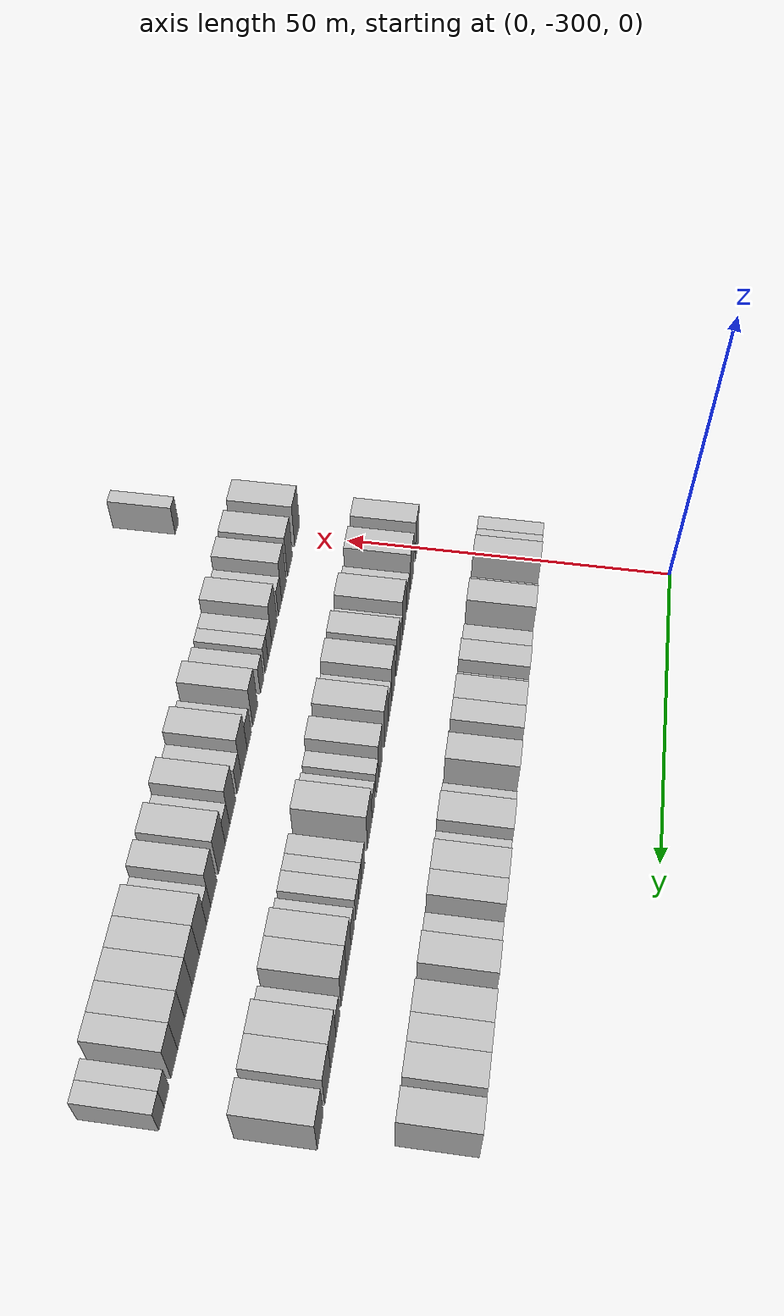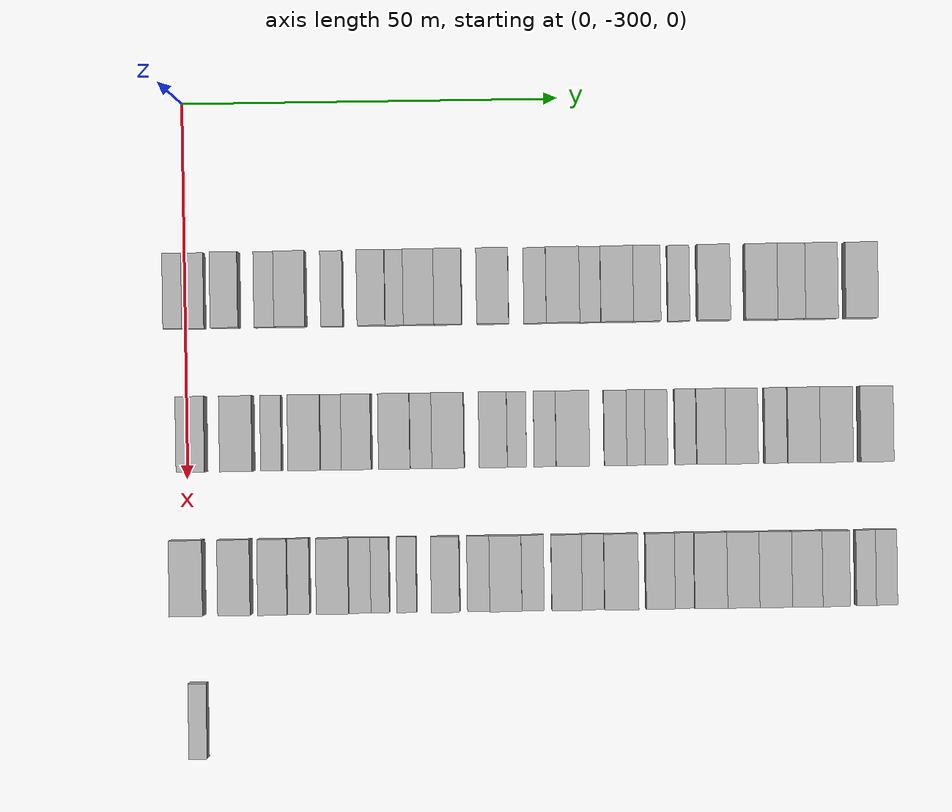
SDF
<sdf version="1.6">
 <world name="default">
  <model name="building_12">
   <static>1</static>
   <pose>25.0000 -301.3705 0 0.000000 0.000000 0.000000</pose>
   <link name="link">
    <pose>0 0 3.00 0 0 0</pose>
    <collision name="collision"><geometry><box><size>10.0000 2.4997 6.0000</size></box></geometry></collision>
    <visual name="visual">
     <cast_shadows>0</cast_shadows>
     <geometry><box><size>10.0000 2.4997 6.0000</size></box></geometry>
     <material>
      <script>
       <uri>model://HANNAS_wall/materials/scripts</uri>
       <uri>model://HANNAS_wall/materials/textures</uri>
       <name>vrc/HANNAS_wall</name>
      </script>
     </material>
    </visual>
   </link>
  </model>
  <model name="building_13">
   <static>1</static>
   <pose>25.0000 -298.6594 0 0.000000 0.000000 0.000000</pose>
   <link name="link">
    <pose>0 0 3.00 0 0 0</pose>
    <collision name="collision"><geometry><box><size>10.0000 2.9223 6.0000</size></box></geometry></collision>
    <visual name="visual">
     <cast_shadows>0</cast_shadows>
     <geometry><box><size>10.0000 2.9223 6.0000</size></box></geometry>
     <material>
      <script>
       <uri>model://HANNAS_wall/materials/scripts</uri>
       <uri>model://HANNAS_wall/materials/textures</uri>
       <name>vrc/HANNAS_wall</name>
      </script>
     </material>
    </visual>
   </link>
  </model>
  <model name="building_14">
   <static>1</static>
   <pose>25.0000 -294.3800 0 0.000000 0.000000 0.000000</pose>
   <link name="link">
    <pose>0 0 4.50 0 0 0</pose>
    <collision name="collision"><geometry><box><size>10.0000 3.6365 9.0000</size></box></geometry></collision>
    <visual name="visual">
     <cast_shadows>0</cast_shadows>
     <geometry><box><size>10.0000 3.6365 9.0000</size></box></geometry>
     <material>
      <script>
       <uri>model://HANNAS_wall/materials/scripts</uri>
       <uri>model://HANNAS_wall/materials/textures</uri>
       <name>vrc/HANNAS_wall</name>
      </script>
     </material>
    </visual>
   </link>
  </model>
  <model name="building_15">
   <static>1</static>
   <pose>25.0000 -289.1877 0 0.000000 0.000000 0.000000</pose>
   <link name="link">
    <pose>0 0 3.00 0 0 0</pose>
    <collision name="collision"><geometry><box><size>10.0000 2.7483 6.0000</size></box></geometry></collision>
    <visual name="visual">
     <cast_shadows>0</cast_shadows>
     <geometry><box><size>10.0000 2.7483 6.0000</size></box></geometry>
     <material>
      <script>
       <uri>model://HANNAS_wall/materials/scripts</uri>
       <uri>model://HANNAS_wall/materials/textures</uri>
       <name>vrc/HANNAS_wall</name>
      </script>
     </material>
    </visual>
   </link>
  </model>
  <model name="building_16">
   <static>1</static>
   <pose>25.0000 -285.7804 0 0.000000 0.000000 0.000000</pose>
   <link name="link">
    <pose>0 0 4.50 0 0 0</pose>
    <collision name="collision"><geometry><box><size>10.0000 4.0662 9.0000</size></box></geometry></collision>
    <visual name="visual">
     <cast_shadows>0</cast_shadows>
     <geometry><box><size>10.0000 4.0662 9.0000</size></box></geometry>
     <material>
      <script>
       <uri>model://HANNAS_wall/materials/scripts</uri>
       <uri>model://HANNAS_wall/materials/textures</uri>
       <name>vrc/HANNAS_wall</name>
      </script>
     </material>
    </visual>
   </link>
  </model>
  <model name="building_17">
   <static>1</static>
   <pose>25.0000 -280.2999 0 0.000000 0.000000 0.000000</pose>
   <link name="link">
    <pose>0 0 3.00 0 0 0</pose>
    <collision name="collision"><geometry><box><size>10.0000 2.8947 6.0000</size></box></geometry></collision>
    <visual name="visual">
     <cast_shadows>0</cast_shadows>
     <geometry><box><size>10.0000 2.8947 6.0000</size></box></geometry>
     <material>
      <script>
       <uri>model://HANNAS_wall/materials/scripts</uri>
       <uri>model://HANNAS_wall/materials/textures</uri>
       <name>vrc/HANNAS_wall</name>
      </script>
     </material>
    </visual>
   </link>
  </model>
  <model name="building_18">
   <static>1</static>
   <pose>25.0000 -275.0192 0 0.000000 0.000000 0.000000</pose>
   <link name="link">
    <pose>0 0 4.50 0 0 0</pose>
    <collision name="collision"><geometry><box><size>10.0000 3.6667 9.0000</size></box></geometry></collision>
    <visual name="visual">
     <cast_shadows>0</cast_shadows>
     <geometry><box><size>10.0000 3.6667 9.0000</size></box></geometry>
     <material>
      <script>
       <uri>model://HANNAS_wall/materials/scripts</uri>
       <uri>model://HANNAS_wall/materials/textures</uri>
       <name>vrc/HANNAS_wall</name>
      </script>
     </material>
    </visual>
   </link>
  </model>
  <model name="building_19">
   <static>1</static>
   <pose>25.0000 -271.9733 0 0.000000 0.000000 0.000000</pose>
   <link name="link">
    <pose>0 0 3.00 0 0 0</pose>
    <collision name="collision"><geometry><box><size>10.0000 2.4252 6.0000</size></box></geometry></collision>
    <visual name="visual">
     <cast_shadows>0</cast_shadows>
     <geometry><box><size>10.0000 2.4252 6.0000</size></box></geometry>
     <material>
      <script>
       <uri>model://HANNAS_wall/materials/scripts</uri>
       <uri>model://HANNAS_wall/materials/textures</uri>
       <name>vrc/HANNAS_wall</name>
      </script>
     </material>
    </visual>
   </link>
  </model>
  <model name="building_20">
   <static>1</static>
   <pose>25.0000 -268.7436 0 0.000000 0.000000 0.000000</pose>
   <link name="link">
    <pose>0 0 4.50 0 0 0</pose>
    <collision name="collision"><geometry><box><size>10.0000 4.0341 9.0000</size></box></geometry></collision>
    <visual name="visual">
     <cast_shadows>0</cast_shadows>
     <geometry><box><size>10.0000 4.0341 9.0000</size></box></geometry>
     <material>
      <script>
       <uri>model://HANNAS_wall/materials/scripts</uri>
       <uri>model://HANNAS_wall/materials/textures</uri>
       <name>vrc/HANNAS_wall</name>
      </script>
     </material>
    </visual>
   </link>
  </model>
  <model name="building_21">
   <static>1</static>
   <pose>25.0000 -264.9043 0 0.000000 0.000000 0.000000</pose>
   <link name="link">
    <pose>0 0 4.50 0 0 0</pose>
    <collision name="collision"><geometry><box><size>10.0000 3.6446 9.0000</size></box></geometry></collision>
    <visual name="visual">
     <cast_shadows>0</cast_shadows>
     <geometry><box><size>10.0000 3.6446 9.0000</size></box></geometry>
     <material>
      <script>
       <uri>model://HANNAS_wall/materials/scripts</uri>
       <uri>model://HANNAS_wall/materials/textures</uri>
       <name>vrc/HANNAS_wall</name>
      </script>
     </material>
    </visual>
   </link>
  </model>
  <model name="building_22">
   <static>1</static>
   <pose>25.0000 -258.9772 0 0.000000 0.000000 0.000000</pose>
   <link name="link">
    <pose>0 0 4.50 0 0 0</pose>
    <collision name="collision"><geometry><box><size>10.0000 4.2097 9.0000</size></box></geometry></collision>
    <visual name="visual">
     <cast_shadows>0</cast_shadows>
     <geometry><box><size>10.0000 4.2097 9.0000</size></box></geometry>
     <material>
      <script>
       <uri>model://HANNAS_wall/materials/scripts</uri>
       <uri>model://HANNAS_wall/materials/textures</uri>
       <name>vrc/HANNAS_wall</name>
      </script>
     </material>
    </visual>
   </link>
  </model>
  <model name="building_23">
   <static>1</static>
   <pose>25.0000 -253.3896 0 0.000000 0.000000 0.000000</pose>
   <link name="link">
    <pose>0 0 3.00 0 0 0</pose>
    <collision name="collision"><geometry><box><size>10.0000 2.9653 6.0000</size></box></geometry></collision>
    <visual name="visual">
     <cast_shadows>0</cast_shadows>
     <geometry><box><size>10.0000 2.9653 6.0000</size></box></geometry>
     <material>
      <script>
       <uri>model://HANNAS_wall/materials/scripts</uri>
       <uri>model://HANNAS_wall/materials/textures</uri>
       <name>vrc/HANNAS_wall</name>
      </script>
     </material>
    </visual>
   </link>
  </model>
  <model name="building_24">
   <static>1</static>
   <pose>25.0000 -249.6999 0 0.000000 0.000000 0.000000</pose>
   <link name="link">
    <pose>0 0 4.50 0 0 0</pose>
    <collision name="collision"><geometry><box><size>10.0000 4.4142 9.0000</size></box></geometry></collision>
    <visual name="visual">
     <cast_shadows>0</cast_shadows>
     <geometry><box><size>10.0000 4.4142 9.0000</size></box></geometry>
     <material>
      <script>
       <uri>model://HANNAS_wall/materials/scripts</uri>
       <uri>model://HANNAS_wall/materials/textures</uri>
       <name>vrc/HANNAS_wall</name>
      </script>
     </material>
    </visual>
   </link>
  </model>
  <model name="building_25">
   <static>1</static>
   <pose>25.0000 -246.0931 0 0.000000 0.000000 0.000000</pose>
   <link name="link">
    <pose>0 0 3.00 0 0 0</pose>
    <collision name="collision"><geometry><box><size>10.0000 2.7993 6.0000</size></box></geometry></collision>
    <visual name="visual">
     <cast_shadows>0</cast_shadows>
     <geometry><box><size>10.0000 2.7993 6.0000</size></box></geometry>
     <material>
      <script>
       <uri>model://HANNAS_wall/materials/scripts</uri>
       <uri>model://HANNAS_wall/materials/textures</uri>
       <name>vrc/HANNAS_wall</name>
      </script>
     </material>
    </visual>
   </link>
  </model>
  <model name="building_26">
   <static>1</static>
   <pose>25.0000 -242.5474 0 0.000000 0.000000 0.000000</pose>
   <link name="link">
    <pose>0 0 4.50 0 0 0</pose>
    <collision name="collision"><geometry><box><size>10.0000 4.2921 9.0000</size></box></geometry></collision>
    <visual name="visual">
     <cast_shadows>0</cast_shadows>
     <geometry><box><size>10.0000 4.2921 9.0000</size></box></geometry>
     <material>
      <script>
       <uri>model://HANNAS_wall/materials/scripts</uri>
       <uri>model://HANNAS_wall/materials/textures</uri>
       <name>vrc/HANNAS_wall</name>
      </script>
     </material>
    </visual>
   </link>
  </model>
  <model name="building_27">
   <static>1</static>
   <pose>25.0000 -238.5943 0 0.000000 0.000000 0.000000</pose>
   <link name="link">
    <pose>0 0 4.50 0 0 0</pose>
    <collision name="collision"><geometry><box><size>10.0000 3.6142 9.0000</size></box></geometry></collision>
    <visual name="visual">
     <cast_shadows>0</cast_shadows>
     <geometry><box><size>10.0000 3.6142 9.0000</size></box></geometry>
     <material>
      <script>
       <uri>model://HANNAS_wall/materials/scripts</uri>
       <uri>model://HANNAS_wall/materials/textures</uri>
       <name>vrc/HANNAS_wall</name>
      </script>
     </material>
    </visual>
   </link>
  </model>
  <model name="building_28">
   <static>1</static>
   <pose>25.0000 -234.3465 0 0.000000 0.000000 0.000000</pose>
   <link name="link">
    <pose>0 0 3.00 0 0 0</pose>
    <collision name="collision"><geometry><box><size>10.0000 2.8813 6.0000</size></box></geometry></collision>
    <visual name="visual">
     <cast_shadows>0</cast_shadows>
     <geometry><box><size>10.0000 2.8813 6.0000</size></box></geometry>
     <material>
      <script>
       <uri>model://HANNAS_wall/materials/scripts</uri>
       <uri>model://HANNAS_wall/materials/textures</uri>
       <name>vrc/HANNAS_wall</name>
      </script>
     </material>
    </visual>
   </link>
  </model>
  <model name="building_29">
   <static>1</static>
   <pose>25.0000 -229.7559 0 0.000000 0.000000 0.000000</pose>
   <link name="link">
    <pose>0 0 4.50 0 0 0</pose>
    <collision name="collision"><geometry><box><size>10.0000 4.2998 9.0000</size></box></geometry></collision>
    <visual name="visual">
     <cast_shadows>0</cast_shadows>
     <geometry><box><size>10.0000 4.2998 9.0000</size></box></geometry>
     <material>
      <script>
       <uri>model://HANNAS_wall/materials/scripts</uri>
       <uri>model://HANNAS_wall/materials/textures</uri>
       <name>vrc/HANNAS_wall</name>
      </script>
     </material>
    </visual>
   </link>
  </model>
  <model name="building_30">
   <static>1</static>
   <pose>25.0000 -223.4997 0 0.000000 0.000000 0.000000</pose>
   <link name="link">
    <pose>0 0 4.50 0 0 0</pose>
    <collision name="collision"><geometry><box><size>10.0000 4.2128 9.0000</size></box></geometry></collision>
    <visual name="visual">
     <cast_shadows>0</cast_shadows>
     <geometry><box><size>10.0000 4.2128 9.0000</size></box></geometry>
     <material>
      <script>
       <uri>model://HANNAS_wall/materials/scripts</uri>
       <uri>model://HANNAS_wall/materials/textures</uri>
       <name>vrc/HANNAS_wall</name>
      </script>
     </material>
    </visual>
   </link>
  </model>
  <model name="building_31">
   <static>1</static>
   <pose>25.0000 -219.5644 0 0.000000 0.000000 0.000000</pose>
   <link name="link">
    <pose>0 0 4.50 0 0 0</pose>
    <collision name="collision"><geometry><box><size>10.0000 3.6578 9.0000</size></box></geometry></collision>
    <visual name="visual">
     <cast_shadows>0</cast_shadows>
     <geometry><box><size>10.0000 3.6578 9.0000</size></box></geometry>
     <material>
      <script>
       <uri>model://HANNAS_wall/materials/scripts</uri>
       <uri>model://HANNAS_wall/materials/textures</uri>
       <name>vrc/HANNAS_wall</name>
      </script>
     </material>
    </visual>
   </link>
  </model>
  <model name="building_32">
   <static>1</static>
   <pose>25.0000 -215.5783 0 0.000000 0.000000 0.000000</pose>
   <link name="link">
    <pose>0 0 4.50 0 0 0</pose>
    <collision name="collision"><geometry><box><size>10.0000 4.3143 9.0000</size></box></geometry></collision>
    <visual name="visual">
     <cast_shadows>0</cast_shadows>
     <geometry><box><size>10.0000 4.3143 9.0000</size></box></geometry>
     <material>
      <script>
       <uri>model://HANNAS_wall/materials/scripts</uri>
       <uri>model://HANNAS_wall/materials/textures</uri>
       <name>vrc/HANNAS_wall</name>
      </script>
     </material>
    </visual>
   </link>
  </model>
  <model name="building_33">
   <static>1</static>
   <pose>25.0000 -210.2812 0 0.000000 0.000000 0.000000</pose>
   <link name="link">
    <pose>0 0 4.50 0 0 0</pose>
    <collision name="collision"><geometry><box><size>10.0000 4.2799 9.0000</size></box></geometry></collision>
    <visual name="visual">
     <cast_shadows>0</cast_shadows>
     <geometry><box><size>10.0000 4.2799 9.0000</size></box></geometry>
     <material>
      <script>
       <uri>model://HANNAS_wall/materials/scripts</uri>
       <uri>model://HANNAS_wall/materials/textures</uri>
       <name>vrc/HANNAS_wall</name>
      </script>
     </material>
    </visual>
   </link>
  </model>
  <model name="building_183">
   <static>1</static>
   <pose>44.0000 -299.1177 0 0.000000 0.000000 0.000000</pose>
   <link name="link">
    <pose>0 0 4.50 0 0 0</pose>
    <collision name="collision"><geometry><box><size>10.0000 3.7399 9.0000</size></box></geometry></collision>
    <visual name="visual">
     <cast_shadows>0</cast_shadows>
     <geometry><box><size>10.0000 3.7399 9.0000</size></box></geometry>
     <material>
      <script>
       <uri>model://HANNAS_wall/materials/scripts</uri>
       <uri>model://HANNAS_wall/materials/textures</uri>
       <name>vrc/HANNAS_wall</name>
      </script>
     </material>
    </visual>
   </link>
  </model>
  <model name="building_184">
   <static>1</static>
   <pose>44.0000 -293.1045 0 0.000000 0.000000 0.000000</pose>
   <link name="link">
    <pose>0 0 4.50 0 0 0</pose>
    <collision name="collision"><geometry><box><size>10.0000 4.2865 9.0000</size></box></geometry></collision>
    <visual name="visual">
     <cast_shadows>0</cast_shadows>
     <geometry><box><size>10.0000 4.2865 9.0000</size></box></geometry>
     <material>
      <script>
       <uri>model://HANNAS_wall/materials/scripts</uri>
       <uri>model://HANNAS_wall/materials/textures</uri>
       <name>vrc/HANNAS_wall</name>
      </script>
     </material>
    </visual>
   </link>
  </model>
  <model name="building_185">
   <static>1</static>
   <pose>44.0000 -288.5981 0 0.000000 0.000000 0.000000</pose>
   <link name="link">
    <pose>0 0 3.00 0 0 0</pose>
    <collision name="collision"><geometry><box><size>10.0000 2.7263 6.0000</size></box></geometry></collision>
    <visual name="visual">
     <cast_shadows>0</cast_shadows>
     <geometry><box><size>10.0000 2.7263 6.0000</size></box></geometry>
     <material>
      <script>
       <uri>model://HANNAS_wall/materials/scripts</uri>
       <uri>model://HANNAS_wall/materials/textures</uri>
       <name>vrc/HANNAS_wall</name>
      </script>
     </material>
    </visual>
   </link>
  </model>
  <model name="building_186">
   <static>1</static>
   <pose>44.0000 -284.1178 0 0.000000 0.000000 0.000000</pose>
   <link name="link">
    <pose>0 0 4.50 0 0 0</pose>
    <collision name="collision"><geometry><box><size>10.0000 4.2342 9.0000</size></box></geometry></collision>
    <visual name="visual">
     <cast_shadows>0</cast_shadows>
     <geometry><box><size>10.0000 4.2342 9.0000</size></box></geometry>
     <material>
      <script>
       <uri>model://HANNAS_wall/materials/scripts</uri>
       <uri>model://HANNAS_wall/materials/textures</uri>
       <name>vrc/HANNAS_wall</name>
      </script>
     </material>
    </visual>
   </link>
  </model>
  <model name="building_187">
   <static>1</static>
   <pose>44.0000 -280.5986 0 0.000000 0.000000 0.000000</pose>
   <link name="link">
    <pose>0 0 3.00 0 0 0</pose>
    <collision name="collision"><geometry><box><size>10.0000 2.8042 6.0000</size></box></geometry></collision>
    <visual name="visual">
     <cast_shadows>0</cast_shadows>
     <geometry><box><size>10.0000 2.8042 6.0000</size></box></geometry>
     <material>
      <script>
       <uri>model://HANNAS_wall/materials/scripts</uri>
       <uri>model://HANNAS_wall/materials/textures</uri>
       <name>vrc/HANNAS_wall</name>
      </script>
     </material>
    </visual>
   </link>
  </model>
  <model name="building_188">
   <static>1</static>
   <pose>44.0000 -277.2508 0 0.000000 0.000000 0.000000</pose>
   <link name="link">
    <pose>0 0 4.50 0 0 0</pose>
    <collision name="collision"><geometry><box><size>10.0000 3.8915 9.0000</size></box></geometry></collision>
    <visual name="visual">
     <cast_shadows>0</cast_shadows>
     <geometry><box><size>10.0000 3.8915 9.0000</size></box></geometry>
     <material>
      <script>
       <uri>model://HANNAS_wall/materials/scripts</uri>
       <uri>model://HANNAS_wall/materials/textures</uri>
       <name>vrc/HANNAS_wall</name>
      </script>
     </material>
    </visual>
   </link>
  </model>
  <model name="building_189">
   <static>1</static>
   <pose>44.0000 -272.2369 0 0.000000 0.000000 0.000000</pose>
   <link name="link">
    <pose>0 0 4.50 0 0 0</pose>
    <collision name="collision"><geometry><box><size>10.0000 4.1362 9.0000</size></box></geometry></collision>
    <visual name="visual">
     <cast_shadows>0</cast_shadows>
     <geometry><box><size>10.0000 4.1362 9.0000</size></box></geometry>
     <material>
      <script>
       <uri>model://HANNAS_wall/materials/scripts</uri>
       <uri>model://HANNAS_wall/materials/textures</uri>
       <name>vrc/HANNAS_wall</name>
      </script>
     </material>
    </visual>
   </link>
  </model>
  <model name="building_190">
   <static>1</static>
   <pose>44.0000 -268.7240 0 0.000000 0.000000 0.000000</pose>
   <link name="link">
    <pose>0 0 3.00 0 0 0</pose>
    <collision name="collision"><geometry><box><size>10.0000 2.8894 6.0000</size></box></geometry></collision>
    <visual name="visual">
     <cast_shadows>0</cast_shadows>
     <geometry><box><size>10.0000 2.8894 6.0000</size></box></geometry>
     <material>
      <script>
       <uri>model://HANNAS_wall/materials/scripts</uri>
       <uri>model://HANNAS_wall/materials/textures</uri>
       <name>vrc/HANNAS_wall</name>
      </script>
     </material>
    </visual>
   </link>
  </model>
  <model name="building_191">
   <static>1</static>
   <pose>44.0000 -265.1579 0 0.000000 0.000000 0.000000</pose>
   <link name="link">
    <pose>0 0 4.50 0 0 0</pose>
    <collision name="collision"><geometry><box><size>10.0000 4.2429 9.0000</size></box></geometry></collision>
    <visual name="visual">
     <cast_shadows>0</cast_shadows>
     <geometry><box><size>10.0000 4.2429 9.0000</size></box></geometry>
     <material>
      <script>
       <uri>model://HANNAS_wall/materials/scripts</uri>
       <uri>model://HANNAS_wall/materials/textures</uri>
       <name>vrc/HANNAS_wall</name>
      </script>
     </material>
    </visual>
   </link>
  </model>
  <model name="building_192">
   <static>1</static>
   <pose>44.0000 -259.1877 0 0.000000 0.000000 0.000000</pose>
   <link name="link">
    <pose>0 0 4.50 0 0 0</pose>
    <collision name="collision"><geometry><box><size>10.0000 3.6976 9.0000</size></box></geometry></collision>
    <visual name="visual">
     <cast_shadows>0</cast_shadows>
     <geometry><box><size>10.0000 3.6976 9.0000</size></box></geometry>
     <material>
      <script>
       <uri>model://HANNAS_wall/materials/scripts</uri>
       <uri>model://HANNAS_wall/materials/textures</uri>
       <name>vrc/HANNAS_wall</name>
      </script>
     </material>
    </visual>
   </link>
  </model>
  <model name="building_193">
   <static>1</static>
   <pose>44.0000 -256.0679 0 0.000000 0.000000 0.000000</pose>
   <link name="link">
    <pose>0 0 3.00 0 0 0</pose>
    <collision name="collision"><geometry><box><size>10.0000 2.5419 6.0000</size></box></geometry></collision>
    <visual name="visual">
     <cast_shadows>0</cast_shadows>
     <geometry><box><size>10.0000 2.5419 6.0000</size></box></geometry>
     <material>
      <script>
       <uri>model://HANNAS_wall/materials/scripts</uri>
       <uri>model://HANNAS_wall/materials/textures</uri>
       <name>vrc/HANNAS_wall</name>
      </script>
     </material>
    </visual>
   </link>
  </model>
  <model name="building_194">
   <static>1</static>
   <pose>44.0000 -252.3451 0 0.000000 0.000000 0.000000</pose>
   <link name="link">
    <pose>0 0 3.00 0 0 0</pose>
    <collision name="collision"><geometry><box><size>10.0000 2.9038 6.0000</size></box></geometry></collision>
    <visual name="visual">
     <cast_shadows>0</cast_shadows>
     <geometry><box><size>10.0000 2.9038 6.0000</size></box></geometry>
     <material>
      <script>
       <uri>model://HANNAS_wall/materials/scripts</uri>
       <uri>model://HANNAS_wall/materials/textures</uri>
       <name>vrc/HANNAS_wall</name>
      </script>
     </material>
    </visual>
   </link>
  </model>
  <model name="building_195">
   <static>1</static>
   <pose>44.0000 -248.6889 0 0.000000 0.000000 0.000000</pose>
   <link name="link">
    <pose>0 0 4.50 0 0 0</pose>
    <collision name="collision"><geometry><box><size>10.0000 4.4085 9.0000</size></box></geometry></collision>
    <visual name="visual">
     <cast_shadows>0</cast_shadows>
     <geometry><box><size>10.0000 4.4085 9.0000</size></box></geometry>
     <material>
      <script>
       <uri>model://HANNAS_wall/materials/scripts</uri>
       <uri>model://HANNAS_wall/materials/textures</uri>
       <name>vrc/HANNAS_wall</name>
      </script>
     </material>
    </visual>
   </link>
  </model>
  <model name="building_196">
   <static>1</static>
   <pose>44.0000 -243.0084 0 0.000000 0.000000 0.000000</pose>
   <link name="link">
    <pose>0 0 3.00 0 0 0</pose>
    <collision name="collision"><geometry><box><size>10.0000 2.9527 6.0000</size></box></geometry></collision>
    <visual name="visual">
     <cast_shadows>0</cast_shadows>
     <geometry><box><size>10.0000 2.9527 6.0000</size></box></geometry>
     <material>
      <script>
       <uri>model://HANNAS_wall/materials/scripts</uri>
       <uri>model://HANNAS_wall/materials/textures</uri>
       <name>vrc/HANNAS_wall</name>
      </script>
     </material>
    </visual>
   </link>
  </model>
  <model name="building_197">
   <static>1</static>
   <pose>44.0000 -240.3116 0 0.000000 0.000000 0.000000</pose>
   <link name="link">
    <pose>0 0 3.00 0 0 0</pose>
    <collision name="collision"><geometry><box><size>10.0000 2.4408 6.0000</size></box></geometry></collision>
    <visual name="visual">
     <cast_shadows>0</cast_shadows>
     <geometry><box><size>10.0000 2.4408 6.0000</size></box></geometry>
     <material>
      <script>
       <uri>model://HANNAS_wall/materials/scripts</uri>
       <uri>model://HANNAS_wall/materials/textures</uri>
       <name>vrc/HANNAS_wall</name>
      </script>
     </material>
    </visual>
   </link>
  </model>
  <model name="building_198">
   <static>1</static>
   <pose>44.0000 -237.5992 0 0.000000 0.000000 0.000000</pose>
   <link name="link">
    <pose>0 0 3.00 0 0 0</pose>
    <collision name="collision"><geometry><box><size>10.0000 2.9841 6.0000</size></box></geometry></collision>
    <visual name="visual">
     <cast_shadows>0</cast_shadows>
     <geometry><box><size>10.0000 2.9841 6.0000</size></box></geometry>
     <material>
      <script>
       <uri>model://HANNAS_wall/materials/scripts</uri>
       <uri>model://HANNAS_wall/materials/textures</uri>
       <name>vrc/HANNAS_wall</name>
      </script>
     </material>
    </visual>
   </link>
  </model>
  <model name="building_199">
   <static>1</static>
   <pose>44.0000 -233.7240 0 0.000000 0.000000 0.000000</pose>
   <link name="link">
    <pose>0 0 3.00 0 0 0</pose>
    <collision name="collision"><geometry><box><size>10.0000 2.7663 6.0000</size></box></geometry></collision>
    <visual name="visual">
     <cast_shadows>0</cast_shadows>
     <geometry><box><size>10.0000 2.7663 6.0000</size></box></geometry>
     <material>
      <script>
       <uri>model://HANNAS_wall/materials/scripts</uri>
       <uri>model://HANNAS_wall/materials/textures</uri>
       <name>vrc/HANNAS_wall</name>
      </script>
     </material>
    </visual>
   </link>
  </model>
  <model name="building_200">
   <static>1</static>
   <pose>44.0000 -230.4372 0 0.000000 0.000000 0.000000</pose>
   <link name="link">
    <pose>0 0 4.50 0 0 0</pose>
    <collision name="collision"><geometry><box><size>10.0000 3.8072 9.0000</size></box></geometry></collision>
    <visual name="visual">
     <cast_shadows>0</cast_shadows>
     <geometry><box><size>10.0000 3.8072 9.0000</size></box></geometry>
     <material>
      <script>
       <uri>model://HANNAS_wall/materials/scripts</uri>
       <uri>model://HANNAS_wall/materials/textures</uri>
       <name>vrc/HANNAS_wall</name>
      </script>
     </material>
    </visual>
   </link>
  </model>
  <model name="building_201">
   <static>1</static>
   <pose>44.0000 -226.3860 0 0.000000 0.000000 0.000000</pose>
   <link name="link">
    <pose>0 0 4.50 0 0 0</pose>
    <collision name="collision"><geometry><box><size>10.0000 4.2951 9.0000</size></box></geometry></collision>
    <visual name="visual">
     <cast_shadows>0</cast_shadows>
     <geometry><box><size>10.0000 4.2951 9.0000</size></box></geometry>
     <material>
      <script>
       <uri>model://HANNAS_wall/materials/scripts</uri>
       <uri>model://HANNAS_wall/materials/textures</uri>
       <name>vrc/HANNAS_wall</name>
      </script>
     </material>
    </visual>
   </link>
  </model>
  <model name="building_202">
   <static>1</static>
   <pose>44.0000 -221.7757 0 0.000000 0.000000 0.000000</pose>
   <link name="link">
    <pose>0 0 3.00 0 0 0</pose>
    <collision name="collision"><geometry><box><size>10.0000 2.9257 6.0000</size></box></geometry></collision>
    <visual name="visual">
     <cast_shadows>0</cast_shadows>
     <geometry><box><size>10.0000 2.9257 6.0000</size></box></geometry>
     <material>
      <script>
       <uri>model://HANNAS_wall/materials/scripts</uri>
       <uri>model://HANNAS_wall/materials/textures</uri>
       <name>vrc/HANNAS_wall</name>
      </script>
     </material>
    </visual>
   </link>
  </model>
  <model name="building_203">
   <static>1</static>
   <pose>44.0000 -218.1892 0 0.000000 0.000000 0.000000</pose>
   <link name="link">
    <pose>0 0 4.50 0 0 0</pose>
    <collision name="collision"><geometry><box><size>10.0000 4.2473 9.0000</size></box></geometry></collision>
    <visual name="visual">
     <cast_shadows>0</cast_shadows>
     <geometry><box><size>10.0000 4.2473 9.0000</size></box></geometry>
     <material>
      <script>
       <uri>model://HANNAS_wall/materials/scripts</uri>
       <uri>model://HANNAS_wall/materials/textures</uri>
       <name>vrc/HANNAS_wall</name>
      </script>
     </material>
    </visual>
   </link>
  </model>
  <model name="building_204">
   <static>1</static>
   <pose>44.0000 -213.9029 0 0.000000 0.000000 0.000000</pose>
   <link name="link">
    <pose>0 0 4.50 0 0 0</pose>
    <collision name="collision"><geometry><box><size>10.0000 4.3253 9.0000</size></box></geometry></collision>
    <visual name="visual">
     <cast_shadows>0</cast_shadows>
     <geometry><box><size>10.0000 4.3253 9.0000</size></box></geometry>
     <material>
      <script>
       <uri>model://HANNAS_wall/materials/scripts</uri>
       <uri>model://HANNAS_wall/materials/textures</uri>
       <name>vrc/HANNAS_wall</name>
      </script>
     </material>
    </visual>
   </link>
  </model>
  <model name="building_205">
   <static>1</static>
   <pose>44.0000 -208.5619 0 0.000000 0.000000 0.000000</pose>
   <link name="link">
    <pose>0 0 4.50 0 0 0</pose>
    <collision name="collision"><geometry><box><size>10.0000 4.3569 9.0000</size></box></geometry></collision>
    <visual name="visual">
     <cast_shadows>0</cast_shadows>
     <geometry><box><size>10.0000 4.3569 9.0000</size></box></geometry>
     <material>
      <script>
       <uri>model://HANNAS_wall/materials/scripts</uri>
       <uri>model://HANNAS_wall/materials/textures</uri>
       <name>vrc/HANNAS_wall</name>
      </script>
     </material>
    </visual>
   </link>
  </model>
  <model name="building_354">
   <static>1</static>
   <pose>63.0000 -299.9789 0 0.000000 0.000000 0.000000</pose>
   <link name="link">
    <pose>0 0 4.50 0 0 0</pose>
    <collision name="collision"><geometry><box><size>10.0000 4.3850 9.0000</size></box></geometry></collision>
    <visual name="visual">
     <cast_shadows>0</cast_shadows>
     <geometry><box><size>10.0000 4.3850 9.0000</size></box></geometry>
     <material>
      <script>
       <uri>model://HANNAS_wall/materials/scripts</uri>
       <uri>model://HANNAS_wall/materials/textures</uri>
       <name>vrc/HANNAS_wall</name>
      </script>
     </material>
    </visual>
   </link>
  </model>
  <model name="building_355">
   <static>1</static>
   <pose>63.0000 -293.6515 0 0.000000 0.000000 0.000000</pose>
   <link name="link">
    <pose>0 0 4.50 0 0 0</pose>
    <collision name="collision"><geometry><box><size>10.0000 4.2697 9.0000</size></box></geometry></collision>
    <visual name="visual">
     <cast_shadows>0</cast_shadows>
     <geometry><box><size>10.0000 4.2697 9.0000</size></box></geometry>
     <material>
      <script>
       <uri>model://HANNAS_wall/materials/scripts</uri>
       <uri>model://HANNAS_wall/materials/textures</uri>
       <name>vrc/HANNAS_wall</name>
      </script>
     </material>
    </visual>
   </link>
  </model>
  <model name="building_356">
   <static>1</static>
   <pose>63.0000 -288.5911 0 0.000000 0.000000 0.000000</pose>
   <link name="link">
    <pose>0 0 4.50 0 0 0</pose>
    <collision name="collision"><geometry><box><size>10.0000 3.8511 9.0000</size></box></geometry></collision>
    <visual name="visual">
     <cast_shadows>0</cast_shadows>
     <geometry><box><size>10.0000 3.8511 9.0000</size></box></geometry>
     <material>
      <script>
       <uri>model://HANNAS_wall/materials/scripts</uri>
       <uri>model://HANNAS_wall/materials/textures</uri>
       <name>vrc/HANNAS_wall</name>
      </script>
     </material>
    </visual>
   </link>
  </model>
  <model name="building_357">
   <static>1</static>
   <pose>63.0000 -285.2332 0 0.000000 0.000000 0.000000</pose>
   <link name="link">
    <pose>0 0 3.00 0 0 0</pose>
    <collision name="collision"><geometry><box><size>10.0000 2.8649 6.0000</size></box></geometry></collision>
    <visual name="visual">
     <cast_shadows>0</cast_shadows>
     <geometry><box><size>10.0000 2.8649 6.0000</size></box></geometry>
     <material>
      <script>
       <uri>model://HANNAS_wall/materials/scripts</uri>
       <uri>model://HANNAS_wall/materials/textures</uri>
       <name>vrc/HANNAS_wall</name>
      </script>
     </material>
    </visual>
   </link>
  </model>
  <model name="building_358">
   <static>1</static>
   <pose>63.0000 -280.6775 0 0.000000 0.000000 0.000000</pose>
   <link name="link">
    <pose>0 0 4.50 0 0 0</pose>
    <collision name="collision"><geometry><box><size>10.0000 4.2465 9.0000</size></box></geometry></collision>
    <visual name="visual">
     <cast_shadows>0</cast_shadows>
     <geometry><box><size>10.0000 4.2465 9.0000</size></box></geometry>
     <material>
      <script>
       <uri>model://HANNAS_wall/materials/scripts</uri>
       <uri>model://HANNAS_wall/materials/textures</uri>
       <name>vrc/HANNAS_wall</name>
      </script>
     </material>
    </visual>
   </link>
  </model>
  <model name="building_359">
   <static>1</static>
   <pose>63.0000 -277.1129 0 0.000000 0.000000 0.000000</pose>
   <link name="link">
    <pose>0 0 3.00 0 0 0</pose>
    <collision name="collision"><geometry><box><size>10.0000 2.8826 6.0000</size></box></geometry></collision>
    <visual name="visual">
     <cast_shadows>0</cast_shadows>
     <geometry><box><size>10.0000 2.8826 6.0000</size></box></geometry>
     <material>
      <script>
       <uri>model://HANNAS_wall/materials/scripts</uri>
       <uri>model://HANNAS_wall/materials/textures</uri>
       <name>vrc/HANNAS_wall</name>
      </script>
     </material>
    </visual>
   </link>
  </model>
  <model name="building_360">
   <static>1</static>
   <pose>63.0000 -274.4585 0 0.000000 0.000000 0.000000</pose>
   <link name="link">
    <pose>0 0 3.00 0 0 0</pose>
    <collision name="collision"><geometry><box><size>10.0000 2.4262 6.0000</size></box></geometry></collision>
    <visual name="visual">
     <cast_shadows>0</cast_shadows>
     <geometry><box><size>10.0000 2.4262 6.0000</size></box></geometry>
     <material>
      <script>
       <uri>model://HANNAS_wall/materials/scripts</uri>
       <uri>model://HANNAS_wall/materials/textures</uri>
       <name>vrc/HANNAS_wall</name>
      </script>
     </material>
    </visual>
   </link>
  </model>
  <model name="building_361">
   <static>1</static>
   <pose>63.0000 -270.9408 0 0.000000 0.000000 0.000000</pose>
   <link name="link">
    <pose>0 0 3.00 0 0 0</pose>
    <collision name="collision"><geometry><box><size>10.0000 2.6093 6.0000</size></box></geometry></collision>
    <visual name="visual">
     <cast_shadows>0</cast_shadows>
     <geometry><box><size>10.0000 2.6093 6.0000</size></box></geometry>
     <material>
      <script>
       <uri>model://HANNAS_wall/materials/scripts</uri>
       <uri>model://HANNAS_wall/materials/textures</uri>
       <name>vrc/HANNAS_wall</name>
      </script>
     </material>
    </visual>
   </link>
  </model>
  <model name="building_362">
   <static>1</static>
   <pose>63.0000 -265.7707 0 0.000000 0.000000 0.000000</pose>
   <link name="link">
    <pose>0 0 4.50 0 0 0</pose>
    <collision name="collision"><geometry><box><size>10.0000 3.7309 9.0000</size></box></geometry></collision>
    <visual name="visual">
     <cast_shadows>0</cast_shadows>
     <geometry><box><size>10.0000 3.7309 9.0000</size></box></geometry>
     <material>
      <script>
       <uri>model://HANNAS_wall/materials/scripts</uri>
       <uri>model://HANNAS_wall/materials/textures</uri>
       <name>vrc/HANNAS_wall</name>
      </script>
     </material>
    </visual>
   </link>
  </model>
  <model name="building_363">
   <static>1</static>
   <pose>63.0000 -261.4186 0 0.000000 0.000000 0.000000</pose>
   <link name="link">
    <pose>0 0 3.00 0 0 0</pose>
    <collision name="collision"><geometry><box><size>10.0000 2.9733 6.0000</size></box></geometry></collision>
    <visual name="visual">
     <cast_shadows>0</cast_shadows>
     <geometry><box><size>10.0000 2.9733 6.0000</size></box></geometry>
     <material>
      <script>
       <uri>model://HANNAS_wall/materials/scripts</uri>
       <uri>model://HANNAS_wall/materials/textures</uri>
       <name>vrc/HANNAS_wall</name>
      </script>
     </material>
    </visual>
   </link>
  </model>
  <model name="building_364">
   <static>1</static>
   <pose>63.0000 -257.8144 0 0.000000 0.000000 0.000000</pose>
   <link name="link">
    <pose>0 0 4.50 0 0 0</pose>
    <collision name="collision"><geometry><box><size>10.0000 4.2352 9.0000</size></box></geometry></collision>
    <visual name="visual">
     <cast_shadows>0</cast_shadows>
     <geometry><box><size>10.0000 4.2352 9.0000</size></box></geometry>
     <material>
      <script>
       <uri>model://HANNAS_wall/materials/scripts</uri>
       <uri>model://HANNAS_wall/materials/textures</uri>
       <name>vrc/HANNAS_wall</name>
      </script>
     </material>
    </visual>
   </link>
  </model>
  <model name="building_365">
   <static>1</static>
   <pose>63.0000 -254.2204 0 0.000000 0.000000 0.000000</pose>
   <link name="link">
    <pose>0 0 3.00 0 0 0</pose>
    <collision name="collision"><geometry><box><size>10.0000 2.9527 6.0000</size></box></geometry></collision>
    <visual name="visual">
     <cast_shadows>0</cast_shadows>
     <geometry><box><size>10.0000 2.9527 6.0000</size></box></geometry>
     <material>
      <script>
       <uri>model://HANNAS_wall/materials/scripts</uri>
       <uri>model://HANNAS_wall/materials/textures</uri>
       <name>vrc/HANNAS_wall</name>
      </script>
     </material>
    </visual>
   </link>
  </model>
  <model name="building_366">
   <static>1</static>
   <pose>63.0000 -249.7431 0 0.000000 0.000000 0.000000</pose>
   <link name="link">
    <pose>0 0 4.50 0 0 0</pose>
    <collision name="collision"><geometry><box><size>10.0000 4.0019 9.0000</size></box></geometry></collision>
    <visual name="visual">
     <cast_shadows>0</cast_shadows>
     <geometry><box><size>10.0000 4.0019 9.0000</size></box></geometry>
     <material>
      <script>
       <uri>model://HANNAS_wall/materials/scripts</uri>
       <uri>model://HANNAS_wall/materials/textures</uri>
       <name>vrc/HANNAS_wall</name>
      </script>
     </material>
    </visual>
   </link>
  </model>
  <model name="building_367">
   <static>1</static>
   <pose>63.0000 -246.2643 0 0.000000 0.000000 0.000000</pose>
   <link name="link">
    <pose>0 0 3.00 0 0 0</pose>
    <collision name="collision"><geometry><box><size>10.0000 2.9558 6.0000</size></box></geometry></collision>
    <visual name="visual">
     <cast_shadows>0</cast_shadows>
     <geometry><box><size>10.0000 2.9558 6.0000</size></box></geometry>
     <material>
      <script>
       <uri>model://HANNAS_wall/materials/scripts</uri>
       <uri>model://HANNAS_wall/materials/textures</uri>
       <name>vrc/HANNAS_wall</name>
      </script>
     </material>
    </visual>
   </link>
  </model>
  <model name="building_368">
   <static>1</static>
   <pose>63.0000 -242.5374 0 0.000000 0.000000 0.000000</pose>
   <link name="link">
    <pose>0 0 4.50 0 0 0</pose>
    <collision name="collision"><geometry><box><size>10.0000 4.4980 9.0000</size></box></geometry></collision>
    <visual name="visual">
     <cast_shadows>0</cast_shadows>
     <geometry><box><size>10.0000 4.4980 9.0000</size></box></geometry>
     <material>
      <script>
       <uri>model://HANNAS_wall/materials/scripts</uri>
       <uri>model://HANNAS_wall/materials/textures</uri>
       <name>vrc/HANNAS_wall</name>
      </script>
     </material>
    </visual>
   </link>
  </model>
  <model name="building_369">
   <static>1</static>
   <pose>63.0000 -237.3913 0 0.000000 0.000000 0.000000</pose>
   <link name="link">
    <pose>0 0 4.50 0 0 0</pose>
    <collision name="collision"><geometry><box><size>10.0000 3.7943 9.0000</size></box></geometry></collision>
    <visual name="visual">
     <cast_shadows>0</cast_shadows>
     <geometry><box><size>10.0000 3.7943 9.0000</size></box></geometry>
     <material>
      <script>
       <uri>model://HANNAS_wall/materials/scripts</uri>
       <uri>model://HANNAS_wall/materials/textures</uri>
       <name>vrc/HANNAS_wall</name>
      </script>
     </material>
    </visual>
   </link>
  </model>
  <model name="building_370">
   <static>1</static>
   <pose>63.0000 -234.1962 0 0.000000 0.000000 0.000000</pose>
   <link name="link">
    <pose>0 0 3.00 0 0 0</pose>
    <collision name="collision"><geometry><box><size>10.0000 2.5958 6.0000</size></box></geometry></collision>
    <visual name="visual">
     <cast_shadows>0</cast_shadows>
     <geometry><box><size>10.0000 2.5958 6.0000</size></box></geometry>
     <material>
      <script>
       <uri>model://HANNAS_wall/materials/scripts</uri>
       <uri>model://HANNAS_wall/materials/textures</uri>
       <name>vrc/HANNAS_wall</name>
      </script>
     </material>
    </visual>
   </link>
  </model>
  <model name="building_371">
   <static>1</static>
   <pose>63.0000 -230.7413 0 0.000000 0.000000 0.000000</pose>
   <link name="link">
    <pose>0 0 4.50 0 0 0</pose>
    <collision name="collision"><geometry><box><size>10.0000 4.3141 9.0000</size></box></geometry></collision>
    <visual name="visual">
     <cast_shadows>0</cast_shadows>
     <geometry><box><size>10.0000 4.3141 9.0000</size></box></geometry>
     <material>
      <script>
       <uri>model://HANNAS_wall/materials/scripts</uri>
       <uri>model://HANNAS_wall/materials/textures</uri>
       <name>vrc/HANNAS_wall</name>
      </script>
     </material>
    </visual>
   </link>
  </model>
  <model name="building_372">
   <static>1</static>
   <pose>63.0000 -226.4671 0 0.000000 0.000000 0.000000</pose>
   <link name="link">
    <pose>0 0 4.50 0 0 0</pose>
    <collision name="collision"><geometry><box><size>10.0000 4.2344 9.0000</size></box></geometry></collision>
    <visual name="visual">
     <cast_shadows>0</cast_shadows>
     <geometry><box><size>10.0000 4.2344 9.0000</size></box></geometry>
     <material>
      <script>
       <uri>model://HANNAS_wall/materials/scripts</uri>
       <uri>model://HANNAS_wall/materials/textures</uri>
       <name>vrc/HANNAS_wall</name>
      </script>
     </material>
    </visual>
   </link>
  </model>
  <model name="building_373">
   <static>1</static>
   <pose>63.0000 -222.2003 0 0.000000 0.000000 0.000000</pose>
   <link name="link">
    <pose>0 0 4.50 0 0 0</pose>
    <collision name="collision"><geometry><box><size>10.0000 4.2993 9.0000</size></box></geometry></collision>
    <visual name="visual">
     <cast_shadows>0</cast_shadows>
     <geometry><box><size>10.0000 4.2993 9.0000</size></box></geometry>
     <material>
      <script>
       <uri>model://HANNAS_wall/materials/scripts</uri>
       <uri>model://HANNAS_wall/materials/textures</uri>
       <name>vrc/HANNAS_wall</name>
      </script>
     </material>
    </visual>
   </link>
  </model>
  <model name="building_374">
   <static>1</static>
   <pose>63.0000 -218.0457 0 0.000000 0.000000 0.000000</pose>
   <link name="link">
    <pose>0 0 4.50 0 0 0</pose>
    <collision name="collision"><geometry><box><size>10.0000 4.0099 9.0000</size></box></geometry></collision>
    <visual name="visual">
     <cast_shadows>0</cast_shadows>
     <geometry><box><size>10.0000 4.0099 9.0000</size></box></geometry>
     <material>
      <script>
       <uri>model://HANNAS_wall/materials/scripts</uri>
       <uri>model://HANNAS_wall/materials/textures</uri>
       <name>vrc/HANNAS_wall</name>
      </script>
     </material>
    </visual>
   </link>
  </model>
  <model name="building_375">
   <static>1</static>
   <pose>63.0000 -214.2318 0 0.000000 0.000000 0.000000</pose>
   <link name="link">
    <pose>0 0 4.50 0 0 0</pose>
    <collision name="collision"><geometry><box><size>10.0000 3.6179 9.0000</size></box></geometry></collision>
    <visual name="visual">
     <cast_shadows>0</cast_shadows>
     <geometry><box><size>10.0000 3.6179 9.0000</size></box></geometry>
     <material>
      <script>
       <uri>model://HANNAS_wall/materials/scripts</uri>
       <uri>model://HANNAS_wall/materials/textures</uri>
       <name>vrc/HANNAS_wall</name>
      </script>
     </material>
    </visual>
   </link>
  </model>
  <model name="building_376">
   <static>1</static>
   <pose>63.0000 -210.1244 0 0.000000 0.000000 0.000000</pose>
   <link name="link">
    <pose>0 0 3.00 0 0 0</pose>
    <collision name="collision"><geometry><box><size>10.0000 2.5969 6.0000</size></box></geometry></collision>
    <visual name="visual">
     <cast_shadows>0</cast_shadows>
     <geometry><box><size>10.0000 2.5969 6.0000</size></box></geometry>
     <material>
      <script>
       <uri>model://HANNAS_wall/materials/scripts</uri>
       <uri>model://HANNAS_wall/materials/textures</uri>
       <name>vrc/HANNAS_wall</name>
      </script>
     </material>
    </visual>
   </link>
  </model>
  <model name="building_377">
   <static>1</static>
   <pose>63.0000 -207.4161 0 0.000000 0.000000 0.000000</pose>
   <link name="link">
    <pose>0 0 3.00 0 0 0</pose>
    <collision name="collision"><geometry><box><size>10.0000 2.8196 6.0000</size></box></geometry></collision>
    <visual name="visual">
     <cast_shadows>0</cast_shadows>
     <geometry><box><size>10.0000 2.8196 6.0000</size></box></geometry>
     <material>
      <script>
       <uri>model://HANNAS_wall/materials/scripts</uri>
       <uri>model://HANNAS_wall/materials/textures</uri>
       <name>vrc/HANNAS_wall</name>
      </script>
     </material>
    </visual>
   </link>
  </model>
  <model name="building_535">
   <static>1</static>
   <pose>82.0000 -298.8431 0 0.000000 0.000000 0.000000</pose>
   <link name="link">
    <pose>0 0 3.00 0 0 0</pose>
    <collision name="collision"><geometry><box><size>10.0000 2.4088 6.0000</size></box></geometry></collision>
    <visual name="visual">
     <cast_shadows>0</cast_shadows>
     <geometry><box><size>10.0000 2.4088 6.0000</size></box></geometry>
     <material>
      <script>
       <uri>model://HANNAS_wall/materials/scripts</uri>
       <uri>model://HANNAS_wall/materials/textures</uri>
       <name>vrc/HANNAS_wall</name>
      </script>
     </material>
    </visual>
   </link>
  </model>
 </world>
</sdf>
